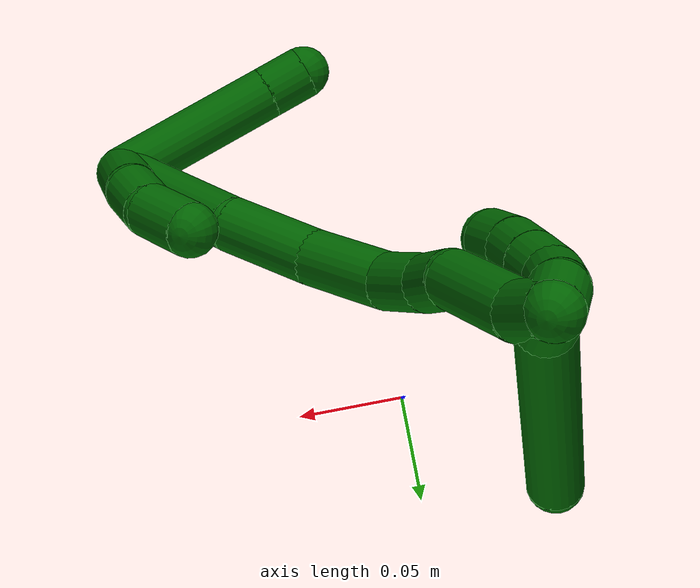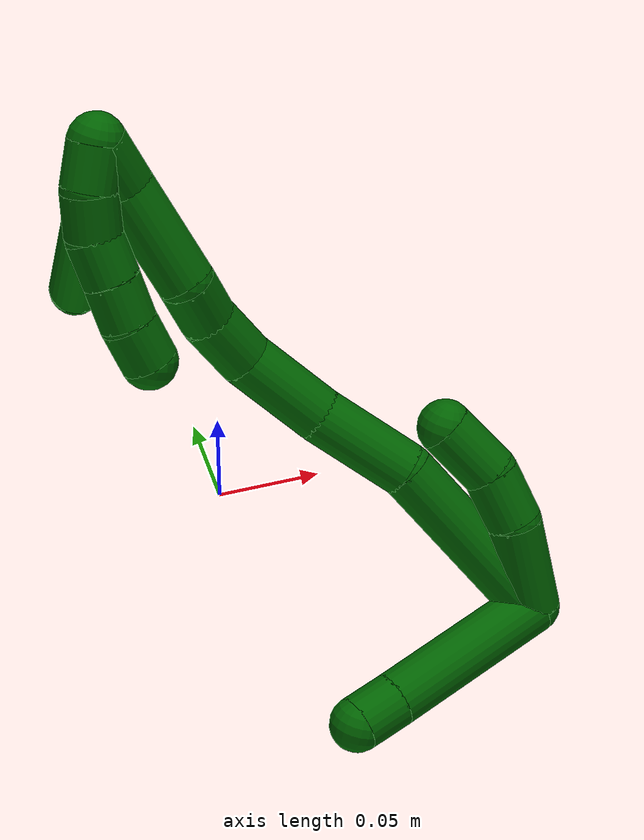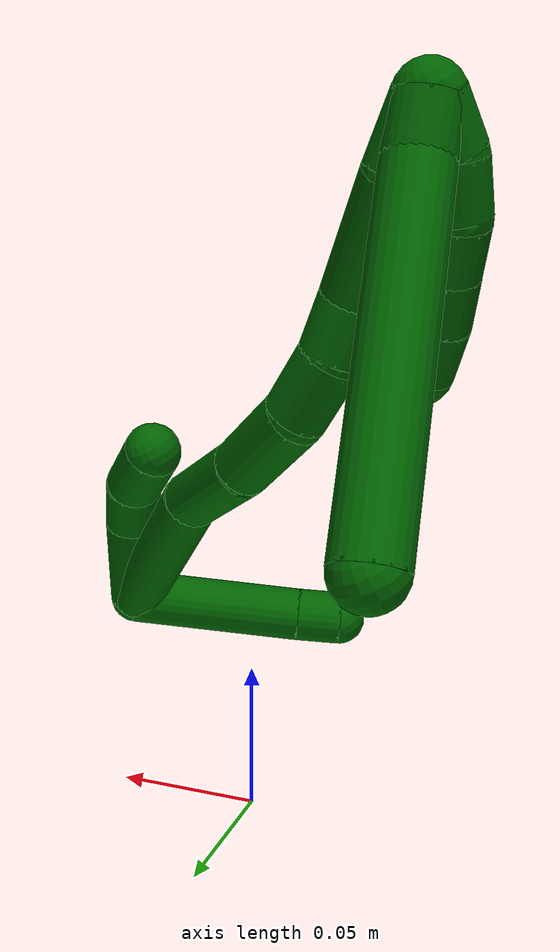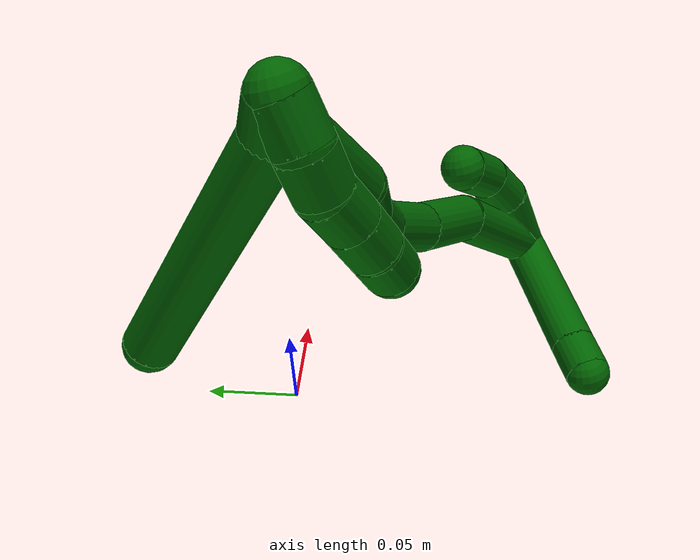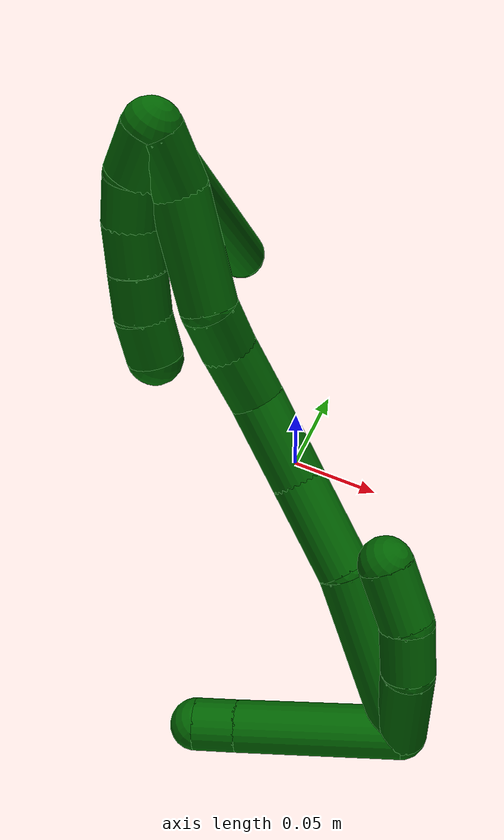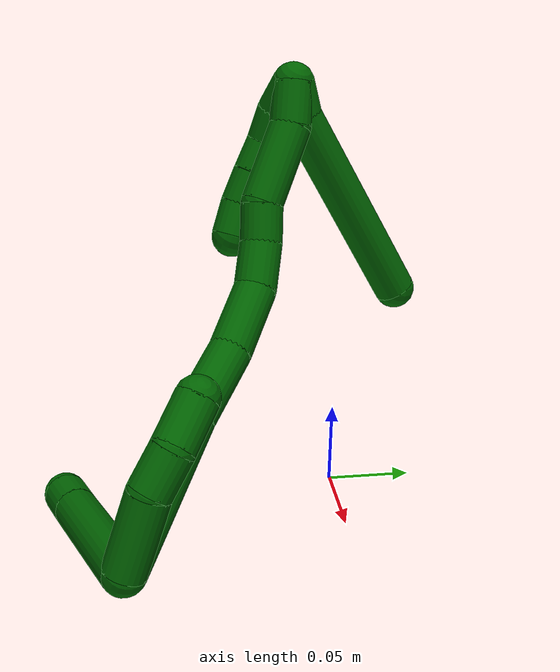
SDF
<sdf version="1.7">
 <world name="default">
  <model name="6">
   <static>0</static>
   <link name="6">
    <collision name="collision-cylinder-e_1_2_8">
     <pose>0.002733 0.005789 -0.00773 -2.49885 0.275738 -0.789764</pose>
     <geometry><cylinder><radius>0.0125</radius><length>0.020074</length></cylinder></geometry>
     <surface>
      <friction><ode><mu>1.16</mu><mu2>1.16</mu2><slip1>0</slip1><slip2>0</slip2></ode></friction>
      <contact><ode><kp>1e+06</kp><kd>1</kd><max_vel>0</max_vel><min_depth>0.001</min_depth></ode></contact>
     </surface>
    </collision>
    <visual name="visual-cylinder-e_1_2_8">
     <pose>0.002733 0.005789 -0.00773 -2.49885 0.275738 -0.789764</pose>
     <geometry><cylinder><radius>0.0125</radius><length>0.020074</length></cylinder></geometry>
     <material><ambient>0 0.392157 0.003922 1</ambient></material>
    </visual>
    <collision name="collision-cylinder-e_2_8_6">
     <pose>0.009519 0.060684 -0.057797 -2.28228 0.062443 -0.13611</pose>
     <geometry><cylinder><radius>0.0125</radius><length>0.129926</length></cylinder></geometry>
     <surface>
      <friction><ode><mu>1.16</mu><mu2>1.16</mu2><slip1>0</slip1><slip2>0</slip2></ode></friction>
      <contact><ode><kp>1e+06</kp><kd>1</kd><max_vel>0</max_vel><min_depth>0.001</min_depth></ode></contact>
     </surface>
    </collision>
    <visual name="visual-cylinder-e_2_8_6">
     <pose>0.009519 0.060684 -0.057797 -2.28228 0.062443 -0.13611</pose>
     <geometry><cylinder><radius>0.0125</radius><length>0.129926</length></cylinder></geometry>
     <material><ambient>0 0.392157 0.003922 1</ambient></material>
    </visual>
    <collision name="collision-cylinder-e_1_2_9">
     <pose>0.000795 -0.001112 -0.009906 3.02983 0.079551 1.2367</pose>
     <geometry><cylinder><radius>0.0125</radius><length>0.02</length></cylinder></geometry>
     <surface>
      <friction><ode><mu>1.16</mu><mu2>1.16</mu2><slip1>0</slip1><slip2>0</slip2></ode></friction>
      <contact><ode><kp>1e+06</kp><kd>1</kd><max_vel>0</max_vel><min_depth>0.001</min_depth></ode></contact>
     </surface>
    </collision>
    <visual name="visual-cylinder-e_1_2_9">
     <pose>0.000795 -0.001112 -0.009906 3.02983 0.079551 1.2367</pose>
     <geometry><cylinder><radius>0.0125</radius><length>0.02</length></cylinder></geometry>
     <material><ambient>0 0.392157 0.003922 1</ambient></material>
    </visual>
    <collision name="collision-cylinder-e_2_9_10">
     <pose>0.004672 -0.001721 -0.029312 -3.08874 0.313318 -2.80999</pose>
     <geometry><cylinder><radius>0.0125</radius><length>0.02</length></cylinder></geometry>
     <surface>
      <friction><ode><mu>1.16</mu><mu2>1.16</mu2><slip1>0</slip1><slip2>0</slip2></ode></friction>
      <contact><ode><kp>1e+06</kp><kd>1</kd><max_vel>0</max_vel><min_depth>0.001</min_depth></ode></contact>
     </surface>
    </collision>
    <visual name="visual-cylinder-e_2_9_10">
     <pose>0.004672 -0.001721 -0.029312 -3.08874 0.313318 -2.80999</pose>
     <geometry><cylinder><radius>0.0125</radius><length>0.02</length></cylinder></geometry>
     <material><ambient>0 0.392157 0.003922 1</ambient></material>
    </visual>
    <collision name="collision-cylinder-e_3_10_11">
     <pose>0.013401 -0.001596 -0.047056 3.09586 0.600083 2.99401</pose>
     <geometry><cylinder><radius>0.0125</radius><length>0.02</length></cylinder></geometry>
     <surface>
      <friction><ode><mu>1.16</mu><mu2>1.16</mu2><slip1>0</slip1><slip2>0</slip2></ode></friction>
      <contact><ode><kp>1e+06</kp><kd>1</kd><max_vel>0</max_vel><min_depth>0.001</min_depth></ode></contact>
     </surface>
    </collision>
    <visual name="visual-cylinder-e_3_10_11">
     <pose>0.013401 -0.001596 -0.047056 3.09586 0.600083 2.99401</pose>
     <geometry><cylinder><radius>0.0125</radius><length>0.02</length></cylinder></geometry>
     <material><ambient>0 0.392157 0.003922 1</ambient></material>
    </visual>
    <collision name="collision-cylinder-e_4_11_12">
     <pose>0.024614 -0.002083 -0.063608 3.12839 0.590262 3.09816</pose>
     <geometry><cylinder><radius>0.0125</radius><length>0.02</length></cylinder></geometry>
     <surface>
      <friction><ode><mu>1.16</mu><mu2>1.16</mu2><slip1>0</slip1><slip2>0</slip2></ode></friction>
      <contact><ode><kp>1e+06</kp><kd>1</kd><max_vel>0</max_vel><min_depth>0.001</min_depth></ode></contact>
     </surface>
    </collision>
    <visual name="visual-cylinder-e_4_11_12">
     <pose>0.024614 -0.002083 -0.063608 3.12839 0.590262 3.09816</pose>
     <geometry><cylinder><radius>0.0125</radius><length>0.02</length></cylinder></geometry>
     <material><ambient>0 0.392157 0.003922 1</ambient></material>
    </visual>
    <collision name="collision-cylinder-e_5_12_5">
     <pose>0.036534 -0.001241 -0.079577 -3.01803 0.688647 -2.79996</pose>
     <geometry><cylinder><radius>0.0125</radius><length>0.02</length></cylinder></geometry>
     <surface>
      <friction><ode><mu>1.16</mu><mu2>1.16</mu2><slip1>0</slip1><slip2>0</slip2></ode></friction>
      <contact><ode><kp>1e+06</kp><kd>1</kd><max_vel>0</max_vel><min_depth>0.001</min_depth></ode></contact>
     </surface>
    </collision>
    <visual name="visual-cylinder-e_5_12_5">
     <pose>0.036534 -0.001241 -0.079577 -3.01803 0.688647 -2.79996</pose>
     <geometry><cylinder><radius>0.0125</radius><length>0.02</length></cylinder></geometry>
     <material><ambient>0 0.392157 0.003922 1</ambient></material>
    </visual>
    <collision name="collision-cylinder-e_1_2_13">
     <pose>0.008064 0.00371 -0.008923 -2.74754 0.695412 -2.13472</pose>
     <geometry><cylinder><radius>0.0125</radius><length>0.025173</length></cylinder></geometry>
     <surface>
      <friction><ode><mu>1.16</mu><mu2>1.16</mu2><slip1>0</slip1><slip2>0</slip2></ode></friction>
      <contact><ode><kp>1e+06</kp><kd>1</kd><max_vel>0</max_vel><min_depth>0.001</min_depth></ode></contact>
     </surface>
    </collision>
    <visual name="visual-cylinder-e_1_2_13">
     <pose>0.008064 0.00371 -0.008923 -2.74754 0.695412 -2.13472</pose>
     <geometry><cylinder><radius>0.0125</radius><length>0.025173</length></cylinder></geometry>
     <material><ambient>0 0.392157 0.003922 1</ambient></material>
    </visual>
    <collision name="collision-cylinder-e_2_13_14">
     <pose>0.033259 0.007687 -0.035022 -3.1261 0.784019 -3.10413</pose>
     <geometry><cylinder><radius>0.0125</radius><length>0.04852</length></cylinder></geometry>
     <surface>
      <friction><ode><mu>1.16</mu><mu2>1.16</mu2><slip1>0</slip1><slip2>0</slip2></ode></friction>
      <contact><ode><kp>1e+06</kp><kd>1</kd><max_vel>0</max_vel><min_depth>0.001</min_depth></ode></contact>
     </surface>
    </collision>
    <visual name="visual-cylinder-e_2_13_14">
     <pose>0.033259 0.007687 -0.035022 -3.1261 0.784019 -3.10413</pose>
     <geometry><cylinder><radius>0.0125</radius><length>0.04852</length></cylinder></geometry>
     <material><ambient>0 0.392157 0.003922 1</ambient></material>
    </visual>
    <collision name="collision-cylinder-e_3_14_15">
     <pose>0.057332 0.011853 -0.060389 -2.69721 0.65314 -1.96508</pose>
     <geometry><cylinder><radius>0.0125</radius><length>0.022845</length></cylinder></geometry>
     <surface>
      <friction><ode><mu>1.16</mu><mu2>1.16</mu2><slip1>0</slip1><slip2>0</slip2></ode></friction>
      <contact><ode><kp>1e+06</kp><kd>1</kd><max_vel>0</max_vel><min_depth>0.001</min_depth></ode></contact>
     </surface>
    </collision>
    <visual name="visual-cylinder-e_3_14_15">
     <pose>0.057332 0.011853 -0.060389 -2.69721 0.65314 -1.96508</pose>
     <geometry><cylinder><radius>0.0125</radius><length>0.022845</length></cylinder></geometry>
     <material><ambient>0 0.392157 0.003922 1</ambient></material>
    </visual>
    <collision name="collision-cylinder-e_4_15_16">
     <pose>0.074986 0.018791 -0.07672 -2.78434 0.889361 -2.41723</pose>
     <geometry><cylinder><radius>0.0125</radius><length>0.027587</length></cylinder></geometry>
     <surface>
      <friction><ode><mu>1.16</mu><mu2>1.16</mu2><slip1>0</slip1><slip2>0</slip2></ode></friction>
      <contact><ode><kp>1e+06</kp><kd>1</kd><max_vel>0</max_vel><min_depth>0.001</min_depth></ode></contact>
     </surface>
    </collision>
    <visual name="visual-cylinder-e_4_15_16">
     <pose>0.074986 0.018791 -0.07672 -2.78434 0.889361 -2.41723</pose>
     <geometry><cylinder><radius>0.0125</radius><length>0.027587</length></cylinder></geometry>
     <material><ambient>0 0.392157 0.003922 1</ambient></material>
    </visual>
    <collision name="collision-cylinder-e_5_16_17">
     <pose>0.104653 0.020882 -0.093638 3.0341 1.13487 2.97317</pose>
     <geometry><cylinder><radius>0.0125</radius><length>0.041818</length></cylinder></geometry>
     <surface>
      <friction><ode><mu>1.16</mu><mu2>1.16</mu2><slip1>0</slip1><slip2>0</slip2></ode></friction>
      <contact><ode><kp>1e+06</kp><kd>1</kd><max_vel>0</max_vel><min_depth>0.001</min_depth></ode></contact>
     </surface>
    </collision>
    <visual name="visual-cylinder-e_5_16_17">
     <pose>0.104653 0.020882 -0.093638 3.0341 1.13487 2.97317</pose>
     <geometry><cylinder><radius>0.0125</radius><length>0.041818</length></cylinder></geometry>
     <material><ambient>0 0.392157 0.003922 1</ambient></material>
    </visual>
    <collision name="collision-cylinder-e_6_17_18">
     <pose>0.14509 0.016315 -0.109539 2.67144 1.21472 2.47787</pose>
     <geometry><cylinder><radius>0.0125</radius><length>0.045843</length></cylinder></geometry>
     <surface>
      <friction><ode><mu>1.16</mu><mu2>1.16</mu2><slip1>0</slip1><slip2>0</slip2></ode></friction>
      <contact><ode><kp>1e+06</kp><kd>1</kd><max_vel>0</max_vel><min_depth>0.001</min_depth></ode></contact>
     </surface>
    </collision>
    <visual name="visual-cylinder-e_6_17_18">
     <pose>0.14509 0.016315 -0.109539 2.67144 1.21472 2.47787</pose>
     <geometry><cylinder><radius>0.0125</radius><length>0.045843</length></cylinder></geometry>
     <material><ambient>0 0.392157 0.003922 1</ambient></material>
    </visual>
    <collision name="collision-cylinder-e_7_18_1">
     <pose>0.20302 0.009768 -0.14133 3.02346 0.972538 2.91878</pose>
     <geometry><cylinder><radius>0.0125</radius><length>0.088212</length></cylinder></geometry>
     <surface>
      <friction><ode><mu>1.16</mu><mu2>1.16</mu2><slip1>0</slip1><slip2>0</slip2></ode></friction>
      <contact><ode><kp>1e+06</kp><kd>1</kd><max_vel>0</max_vel><min_depth>0.001</min_depth></ode></contact>
     </surface>
    </collision>
    <visual name="visual-cylinder-e_7_18_1">
     <pose>0.20302 0.009768 -0.14133 3.02346 0.972538 2.91878</pose>
     <geometry><cylinder><radius>0.0125</radius><length>0.088212</length></cylinder></geometry>
     <material><ambient>0 0.392157 0.003922 1</ambient></material>
    </visual>
    <collision name="collision-cylinder-e_1_1_19">
     <pose>0.210498 -0.010701 -0.186794 2.44089 -0.816762 -1.739</pose>
     <geometry><cylinder><radius>0.0125</radius><length>0.079481</length></cylinder></geometry>
     <surface>
      <friction><ode><mu>1.16</mu><mu2>1.16</mu2><slip1>0</slip1><slip2>0</slip2></ode></friction>
      <contact><ode><kp>1e+06</kp><kd>1</kd><max_vel>0</max_vel><min_depth>0.001</min_depth></ode></contact>
     </surface>
    </collision>
    <visual name="visual-cylinder-e_1_1_19">
     <pose>0.210498 -0.010701 -0.186794 2.44089 -0.816762 -1.739</pose>
     <geometry><cylinder><radius>0.0125</radius><length>0.079481</length></cylinder></geometry>
     <material><ambient>0 0.392157 0.003922 1</ambient></material>
    </visual>
    <collision name="collision-cylinder-e_2_19_4">
     <pose>0.173924 -0.032881 -0.212678 2.40237 -0.835029 -1.7058</pose>
     <geometry><cylinder><radius>0.0125</radius><length>0.020519</length></cylinder></geometry>
     <surface>
      <friction><ode><mu>1.16</mu><mu2>1.16</mu2><slip1>0</slip1><slip2>0</slip2></ode></friction>
      <contact><ode><kp>1e+06</kp><kd>1</kd><max_vel>0</max_vel><min_depth>0.001</min_depth></ode></contact>
     </surface>
    </collision>
    <visual name="visual-cylinder-e_2_19_4">
     <pose>0.173924 -0.032881 -0.212678 2.40237 -0.835029 -1.7058</pose>
     <geometry><cylinder><radius>0.0125</radius><length>0.020519</length></cylinder></geometry>
     <material><ambient>0 0.392157 0.003922 1</ambient></material>
    </visual>
    <collision name="collision-cylinder-e_1_1_20">
     <pose>0.228651 0.005315 -0.14603 0.076218 -0.495141 -0.019273</pose>
     <geometry><cylinder><radius>0.0125</radius><length>0.045519</length></cylinder></geometry>
     <surface>
      <friction><ode><mu>1.16</mu><mu2>1.16</mu2><slip1>0</slip1><slip2>0</slip2></ode></friction>
      <contact><ode><kp>1e+06</kp><kd>1</kd><max_vel>0</max_vel><min_depth>0.001</min_depth></ode></contact>
     </surface>
    </collision>
    <visual name="visual-cylinder-e_1_1_20">
     <pose>0.228651 0.005315 -0.14603 0.076218 -0.495141 -0.019273</pose>
     <geometry><cylinder><radius>0.0125</radius><length>0.045519</length></cylinder></geometry>
     <material><ambient>0 0.392157 0.003922 1</ambient></material>
    </visual>
    <collision name="collision-cylinder-e_2_20_21">
     <pose>0.209684 0.005332 -0.116528 -0.160295 -0.701106 0.058722</pose>
     <geometry><cylinder><radius>0.0125</radius><length>0.025278</length></cylinder></geometry>
     <surface>
      <friction><ode><mu>1.16</mu><mu2>1.16</mu2><slip1>0</slip1><slip2>0</slip2></ode></friction>
      <contact><ode><kp>1e+06</kp><kd>1</kd><max_vel>0</max_vel><min_depth>0.001</min_depth></ode></contact>
     </surface>
    </collision>
    <visual name="visual-cylinder-e_2_20_21">
     <pose>0.209684 0.005332 -0.116528 -0.160295 -0.701106 0.058722</pose>
     <geometry><cylinder><radius>0.0125</radius><length>0.025278</length></cylinder></geometry>
     <material><ambient>0 0.392157 0.003922 1</ambient></material>
    </visual>
    <collision name="collision-cylinder-e_3_21_3">
     <pose>0.189113 0.008252 -0.099438 -0.180485 -1.01686 0.100772</pose>
     <geometry><cylinder><radius>0.0125</radius><length>0.029203</length></cylinder></geometry>
     <surface>
      <friction><ode><mu>1.16</mu><mu2>1.16</mu2><slip1>0</slip1><slip2>0</slip2></ode></friction>
      <contact><ode><kp>1e+06</kp><kd>1</kd><max_vel>0</max_vel><min_depth>0.001</min_depth></ode></contact>
     </surface>
    </collision>
    <visual name="visual-cylinder-e_3_21_3">
     <pose>0.189113 0.008252 -0.099438 -0.180485 -1.01686 0.100772</pose>
     <geometry><cylinder><radius>0.0125</radius><length>0.029203</length></cylinder></geometry>
     <material><ambient>0 0.392157 0.003922 1</ambient></material>
    </visual>
    <collision name="collision-sphere-3">
     <pose>0.176695 0.009631 -0.091882 0 -0 0</pose>
     <geometry><sphere><radius>0.0125</radius></sphere></geometry>
     <surface>
      <friction><ode><mu>1.16</mu><mu2>1.16</mu2><slip1>0</slip1><slip2>0</slip2></ode></friction>
      <contact><ode><kp>1e+06</kp><kd>1</kd><max_vel>0</max_vel><min_depth>0.001</min_depth></ode></contact>
     </surface>
    </collision>
    <visual name="visual-sphere-3">
     <pose>0.176695 0.009631 -0.091882 0 -0 0</pose>
     <geometry><sphere><radius>0.0125</radius></sphere></geometry>
     <material><ambient>0 0.392157 0.003922 1</ambient></material>
    </visual>
    <collision name="collision-sphere-21">
     <pose>0.201531 0.006873 -0.106994 0 -0 0</pose>
     <geometry><sphere><radius>0.0125</radius></sphere></geometry>
     <surface>
      <friction><ode><mu>1.16</mu><mu2>1.16</mu2><slip1>0</slip1><slip2>0</slip2></ode></friction>
      <contact><ode><kp>1e+06</kp><kd>1</kd><max_vel>0</max_vel><min_depth>0.001</min_depth></ode></contact>
     </surface>
    </collision>
    <visual name="visual-sphere-21">
     <pose>0.201531 0.006873 -0.106994 0 -0 0</pose>
     <geometry><sphere><radius>0.0125</radius></sphere></geometry>
     <material><ambient>0 0.392157 0.003922 1</ambient></material>
    </visual>
    <collision name="collision-sphere-20">
     <pose>0.217837 0.00379 -0.126062 0 -0 0</pose>
     <geometry><sphere><radius>0.0125</radius></sphere></geometry>
     <surface>
      <friction><ode><mu>1.16</mu><mu2>1.16</mu2><slip1>0</slip1><slip2>0</slip2></ode></friction>
      <contact><ode><kp>1e+06</kp><kd>1</kd><max_vel>0</max_vel><min_depth>0.001</min_depth></ode></contact>
     </surface>
    </collision>
    <visual name="visual-sphere-20">
     <pose>0.217837 0.00379 -0.126062 0 -0 0</pose>
     <geometry><sphere><radius>0.0125</radius></sphere></geometry>
     <material><ambient>0 0.392157 0.003922 1</ambient></material>
    </visual>
    <collision name="collision-sphere-4">
     <pose>0.166318 -0.03752 -0.217767 0 -0 0</pose>
     <geometry><sphere><radius>0.0125</radius></sphere></geometry>
     <surface>
      <friction><ode><mu>1.16</mu><mu2>1.16</mu2><slip1>0</slip1><slip2>0</slip2></ode></friction>
      <contact><ode><kp>1e+06</kp><kd>1</kd><max_vel>0</max_vel><min_depth>0.001</min_depth></ode></contact>
     </surface>
    </collision>
    <visual name="visual-sphere-4">
     <pose>0.166318 -0.03752 -0.217767 0 -0 0</pose>
     <geometry><sphere><radius>0.0125</radius></sphere></geometry>
     <material><ambient>0 0.392157 0.003922 1</ambient></material>
    </visual>
    <collision name="collision-sphere-11">
     <pose>0.019048 -0.001973 -0.055301 0 -0 0</pose>
     <geometry><sphere><radius>0.0125</radius></sphere></geometry>
     <surface>
      <friction><ode><mu>1.16</mu><mu2>1.16</mu2><slip1>0</slip1><slip2>0</slip2></ode></friction>
      <contact><ode><kp>1e+06</kp><kd>1</kd><max_vel>0</max_vel><min_depth>0.001</min_depth></ode></contact>
     </surface>
    </collision>
    <visual name="visual-sphere-11">
     <pose>0.019048 -0.001973 -0.055301 0 -0 0</pose>
     <geometry><sphere><radius>0.0125</radius></sphere></geometry>
     <material><ambient>0 0.392157 0.003922 1</ambient></material>
    </visual>
    <collision name="collision-sphere-10">
     <pose>0.007754 -0.001218 -0.038812 0 -0 0</pose>
     <geometry><sphere><radius>0.0125</radius></sphere></geometry>
     <surface>
      <friction><ode><mu>1.16</mu><mu2>1.16</mu2><slip1>0</slip1><slip2>0</slip2></ode></friction>
      <contact><ode><kp>1e+06</kp><kd>1</kd><max_vel>0</max_vel><min_depth>0.001</min_depth></ode></contact>
     </surface>
    </collision>
    <visual name="visual-sphere-10">
     <pose>0.007754 -0.001218 -0.038812 0 -0 0</pose>
     <geometry><sphere><radius>0.0125</radius></sphere></geometry>
     <material><ambient>0 0.392157 0.003922 1</ambient></material>
    </visual>
    <collision name="collision-sphere-6">
     <pose>0.013573 0.109791 -0.100132 0 -0 0</pose>
     <geometry><sphere><radius>0.0125</radius></sphere></geometry>
     <surface>
      <friction><ode><mu>1.16</mu><mu2>1.16</mu2><slip1>0</slip1><slip2>0</slip2></ode></friction>
      <contact><ode><kp>1e+06</kp><kd>1</kd><max_vel>0</max_vel><min_depth>0.001</min_depth></ode></contact>
     </surface>
    </collision>
    <visual name="visual-sphere-6">
     <pose>0.013573 0.109791 -0.100132 0 -0 0</pose>
     <geometry><sphere><radius>0.0125</radius></sphere></geometry>
     <material><ambient>0 0.392157 0.003922 1</ambient></material>
    </visual>
    <collision name="collision-sphere-9">
     <pose>0.001589 -0.002224 -0.019812 0 -0 0</pose>
     <geometry><sphere><radius>0.0125</radius></sphere></geometry>
     <surface>
      <friction><ode><mu>1.16</mu><mu2>1.16</mu2><slip1>0</slip1><slip2>0</slip2></ode></friction>
      <contact><ode><kp>1e+06</kp><kd>1</kd><max_vel>0</max_vel><min_depth>0.001</min_depth></ode></contact>
     </surface>
    </collision>
    <visual name="visual-sphere-9">
     <pose>0.001589 -0.002224 -0.019812 0 -0 0</pose>
     <geometry><sphere><radius>0.0125</radius></sphere></geometry>
     <material><ambient>0 0.392157 0.003922 1</ambient></material>
    </visual>
    <collision name="collision-sphere-2">
     <geometry><sphere><radius>0.0125</radius></sphere></geometry>
     <surface>
      <friction><ode><mu>1.16</mu><mu2>1.16</mu2><slip1>0</slip1><slip2>0</slip2></ode></friction>
      <contact><ode><kp>1e+06</kp><kd>1</kd><max_vel>0</max_vel><min_depth>0.001</min_depth></ode></contact>
     </surface>
    </collision>
    <visual name="visual-sphere-2">
     <geometry><sphere><radius>0.0125</radius></sphere></geometry>
     <material><ambient>0 0.392157 0.003922 1</ambient></material>
    </visual>
    <collision name="collision-sphere-19">
     <pose>0.181529 -0.028242 -0.20759 0 -0 0</pose>
     <geometry><sphere><radius>0.0125</radius></sphere></geometry>
     <surface>
      <friction><ode><mu>1.16</mu><mu2>1.16</mu2><slip1>0</slip1><slip2>0</slip2></ode></friction>
      <contact><ode><kp>1e+06</kp><kd>1</kd><max_vel>0</max_vel><min_depth>0.001</min_depth></ode></contact>
     </surface>
    </collision>
    <visual name="visual-sphere-19">
     <pose>0.181529 -0.028242 -0.20759 0 -0 0</pose>
     <geometry><sphere><radius>0.0125</radius></sphere></geometry>
     <material><ambient>0 0.392157 0.003922 1</ambient></material>
    </visual>
    <collision name="collision-sphere-8">
     <pose>0.005465 0.011577 -0.015461 0 -0 0</pose>
     <geometry><sphere><radius>0.0125</radius></sphere></geometry>
     <surface>
      <friction><ode><mu>1.16</mu><mu2>1.16</mu2><slip1>0</slip1><slip2>0</slip2></ode></friction>
      <contact><ode><kp>1e+06</kp><kd>1</kd><max_vel>0</max_vel><min_depth>0.001</min_depth></ode></contact>
     </surface>
    </collision>
    <visual name="visual-sphere-8">
     <pose>0.005465 0.011577 -0.015461 0 -0 0</pose>
     <geometry><sphere><radius>0.0125</radius></sphere></geometry>
     <material><ambient>0 0.392157 0.003922 1</ambient></material>
    </visual>
    <collision name="collision-sphere-12">
     <pose>0.030179 -0.002193 -0.071915 0 -0 0</pose>
     <geometry><sphere><radius>0.0125</radius></sphere></geometry>
     <surface>
      <friction><ode><mu>1.16</mu><mu2>1.16</mu2><slip1>0</slip1><slip2>0</slip2></ode></friction>
      <contact><ode><kp>1e+06</kp><kd>1</kd><max_vel>0</max_vel><min_depth>0.001</min_depth></ode></contact>
     </surface>
    </collision>
    <visual name="visual-sphere-12">
     <pose>0.030179 -0.002193 -0.071915 0 -0 0</pose>
     <geometry><sphere><radius>0.0125</radius></sphere></geometry>
     <material><ambient>0 0.392157 0.003922 1</ambient></material>
    </visual>
    <collision name="collision-sphere-5">
     <pose>0.042889 -0.000289 -0.087239 0 -0 0</pose>
     <geometry><sphere><radius>0.0125</radius></sphere></geometry>
     <surface>
      <friction><ode><mu>1.16</mu><mu2>1.16</mu2><slip1>0</slip1><slip2>0</slip2></ode></friction>
      <contact><ode><kp>1e+06</kp><kd>1</kd><max_vel>0</max_vel><min_depth>0.001</min_depth></ode></contact>
     </surface>
    </collision>
    <visual name="visual-sphere-5">
     <pose>0.042889 -0.000289 -0.087239 0 -0 0</pose>
     <geometry><sphere><radius>0.0125</radius></sphere></geometry>
     <material><ambient>0 0.392157 0.003922 1</ambient></material>
    </visual>
    <collision name="collision-sphere-13">
     <pose>0.016128 0.007421 -0.017846 0 -0 0</pose>
     <geometry><sphere><radius>0.0125</radius></sphere></geometry>
     <surface>
      <friction><ode><mu>1.16</mu><mu2>1.16</mu2><slip1>0</slip1><slip2>0</slip2></ode></friction>
      <contact><ode><kp>1e+06</kp><kd>1</kd><max_vel>0</max_vel><min_depth>0.001</min_depth></ode></contact>
     </surface>
    </collision>
    <visual name="visual-sphere-13">
     <pose>0.016128 0.007421 -0.017846 0 -0 0</pose>
     <geometry><sphere><radius>0.0125</radius></sphere></geometry>
     <material><ambient>0 0.392157 0.003922 1</ambient></material>
    </visual>
    <collision name="collision-sphere-14">
     <pose>0.05039 0.007953 -0.052199 0 -0 0</pose>
     <geometry><sphere><radius>0.0125</radius></sphere></geometry>
     <surface>
      <friction><ode><mu>1.16</mu><mu2>1.16</mu2><slip1>0</slip1><slip2>0</slip2></ode></friction>
      <contact><ode><kp>1e+06</kp><kd>1</kd><max_vel>0</max_vel><min_depth>0.001</min_depth></ode></contact>
     </surface>
    </collision>
    <visual name="visual-sphere-14">
     <pose>0.05039 0.007953 -0.052199 0 -0 0</pose>
     <geometry><sphere><radius>0.0125</radius></sphere></geometry>
     <material><ambient>0 0.392157 0.003922 1</ambient></material>
    </visual>
    <collision name="collision-sphere-15">
     <pose>0.064273 0.015753 -0.06858 0 -0 0</pose>
     <geometry><sphere><radius>0.0125</radius></sphere></geometry>
     <surface>
      <friction><ode><mu>1.16</mu><mu2>1.16</mu2><slip1>0</slip1><slip2>0</slip2></ode></friction>
      <contact><ode><kp>1e+06</kp><kd>1</kd><max_vel>0</max_vel><min_depth>0.001</min_depth></ode></contact>
     </surface>
    </collision>
    <visual name="visual-sphere-15">
     <pose>0.064273 0.015753 -0.06858 0 -0 0</pose>
     <geometry><sphere><radius>0.0125</radius></sphere></geometry>
     <material><ambient>0 0.392157 0.003922 1</ambient></material>
    </visual>
    <collision name="collision-sphere-16">
     <pose>0.085699 0.021829 -0.08486 0 -0 0</pose>
     <geometry><sphere><radius>0.0125</radius></sphere></geometry>
     <surface>
      <friction><ode><mu>1.16</mu><mu2>1.16</mu2><slip1>0</slip1><slip2>0</slip2></ode></friction>
      <contact><ode><kp>1e+06</kp><kd>1</kd><max_vel>0</max_vel><min_depth>0.001</min_depth></ode></contact>
     </surface>
    </collision>
    <visual name="visual-sphere-16">
     <pose>0.085699 0.021829 -0.08486 0 -0 0</pose>
     <geometry><sphere><radius>0.0125</radius></sphere></geometry>
     <material><ambient>0 0.392157 0.003922 1</ambient></material>
    </visual>
    <collision name="collision-sphere-17">
     <pose>0.123606 0.019935 -0.102416 0 -0 0</pose>
     <geometry><sphere><radius>0.0125</radius></sphere></geometry>
     <surface>
      <friction><ode><mu>1.16</mu><mu2>1.16</mu2><slip1>0</slip1><slip2>0</slip2></ode></friction>
      <contact><ode><kp>1e+06</kp><kd>1</kd><max_vel>0</max_vel><min_depth>0.001</min_depth></ode></contact>
     </surface>
    </collision>
    <visual name="visual-sphere-17">
     <pose>0.123606 0.019935 -0.102416 0 -0 0</pose>
     <geometry><sphere><radius>0.0125</radius></sphere></geometry>
     <material><ambient>0 0.392157 0.003922 1</ambient></material>
    </visual>
    <collision name="collision-sphere-18">
     <pose>0.166574 0.012695 -0.116663 0 -0 0</pose>
     <geometry><sphere><radius>0.0125</radius></sphere></geometry>
     <surface>
      <friction><ode><mu>1.16</mu><mu2>1.16</mu2><slip1>0</slip1><slip2>0</slip2></ode></friction>
      <contact><ode><kp>1e+06</kp><kd>1</kd><max_vel>0</max_vel><min_depth>0.001</min_depth></ode></contact>
     </surface>
    </collision>
    <visual name="visual-sphere-18">
     <pose>0.166574 0.012695 -0.116663 0 -0 0</pose>
     <geometry><sphere><radius>0.0125</radius></sphere></geometry>
     <material><ambient>0 0.392157 0.003922 1</ambient></material>
    </visual>
    <collision name="collision-sphere-1">
     <pose>0.239466 0.00684 -0.165998 0 -0 0</pose>
     <geometry><sphere><radius>0.0125</radius></sphere></geometry>
     <surface>
      <friction><ode><mu>1.16</mu><mu2>1.16</mu2><slip1>0</slip1><slip2>0</slip2></ode></friction>
      <contact><ode><kp>1e+06</kp><kd>1</kd><max_vel>0</max_vel><min_depth>0.001</min_depth></ode></contact>
     </surface>
    </collision>
    <visual name="visual-sphere-1">
     <pose>0.239466 0.00684 -0.165998 0 -0 0</pose>
     <geometry><sphere><radius>0.0125</radius></sphere></geometry>
     <material><ambient>0 0.392157 0.003922 1</ambient></material>
    </visual>
    <inertial>
     <pose>0.104739 0.014235 -0.094381 0 -0 0</pose>
     <mass>0.75</mass>
     <inertia>
      <ixx>0.0001</ixx>
      <ixy>0</ixy>
      <ixz>0</ixz>
      <iyy>-2.5e-05</iyy>
      <iyz>0</iyz>
      <izz>-0.000196</izz>
     </inertia>
    </inertial>
   </link>
   <pose>-0.050878 -0.019833 0.237906 -0.380861 0.275959 -0.306533</pose>
  </model>
 </world>
</sdf>
